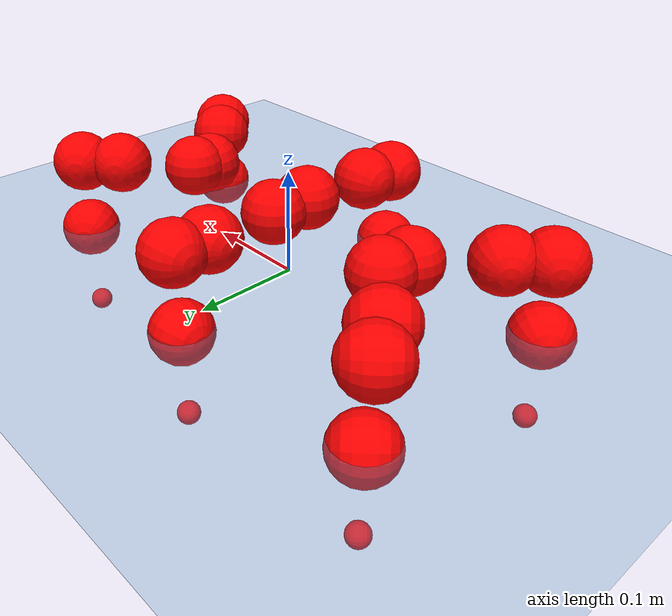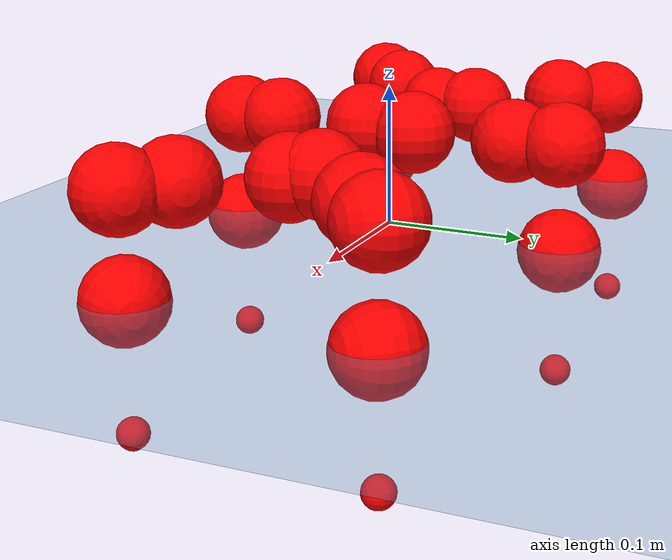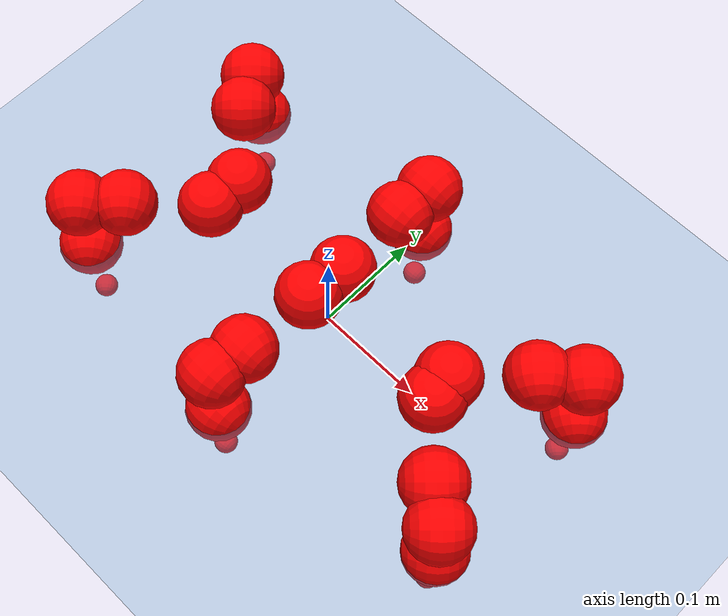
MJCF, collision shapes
<mujoco model="Golem">
  <compiler angle="radian" assetdir="assets" balanceinertia="true" inertiafromgeom="false"/>

  <option timestep="0.005" density="1.2" viscosity="2e-05"/>

  <size nkey="1"/>

  <visual>
    <quality shadowsize="8192"/>
    <map shadowclip="0.5"/>
  </visual>

  <default>
    <default class="/">
      <joint armature="0.01" damping="0.01" frictionloss="0.01"/>
      <geom contype="0" conaffinity="0" group="1" solref="-1000 -80"/>
      <site size="0.01 0.005 0.005" group="5"/>
      <general forcelimited="true" biastype="affine" gainprm="25" biasprm="0 -25 -0.5"/>
      <default class="visual">
        <geom type="mesh" group="2"/>
      </default>
      <default class="collision">
        <geom group="3"/>
      </default>
      <default class="foot">
        <geom size="0.01 0 0" condim="6" group="4" priority="1" solimp="0.015 1 0.01"/>
      </default>
      <default class="reward_collision_sphere">
        <geom group="5" rgba="1 0 0 1"/>
      </default>
    </default>
  </default>

  <asset>
    <texture type="skybox" colorspace="auto" name="//unnamed_texture_0" builtin="gradient" rgb1="0.95 0.95 0.95" rgb2="0.95 0.95 0.95" width="100" height="600"/>
    <texture type="2d" colorspace="auto" name="texplane" builtin="checker" rgb1="0.345 0.575 0.748" rgb2="0.345 0.575 0.748" markrgb="1 1 1" width="512" height="512"/>
    <material name="MatPlane" class="/" texture="texplane" texuniform="true" texrepeat="2 2" specular="0.9"/>
    <mesh name="body" class="/" file="body.stl" scale="0.001 0.001 0.001"/>
    <mesh name="coxa" class="/" file="coxa.stl" scale="0.001 0.001 0.001"/>
    <mesh name="femur" class="/" file="femur.stl" scale="0.001 0.001 0.001"/>
    <mesh name="tibia" class="/" file="tibia.stl" scale="0.001 0.001 0.001"/>
    <mesh name="tarsus" class="/" file="tarsus.stl" scale="0.001 0.001 0.001"/>
  </asset>

  <worldbody>
    <geom name="floor" class="/" size="100 100 0.125" type="plane" group="0" material="MatPlane"/>
    <light name="toplight_shadow" class="/" pos="0 0 5" dir="0.0990148 0.0990148 -0.990148" type="directional" ambient="0.04 0.04 0.04" diffuse="0.55 0.55 0.55" specular="0.12 0.12 0.12"/>
    <light name="toplight_fill" class="/" pos="0 0 5" dir="0.0990148 0.0990148 -0.990148" type="directional" castshadow="false" ambient="0.04 0.04 0.04" diffuse="0.3 0.3 0.3" specular="0.08 0.08 0.08"/>
    <body name="trunk" pos="0.000216411 -0.000286501 0.00214795" quat="1 0.000589092 -0.00019794 0.000322249">
      <inertial pos="0.00317705 0.000323666 -0.00258976" quat="1 0.000180201 3.80427e-05 1.50365e-05" mass="1.44205" diaginertia="0.00406627 5.4065e-05 0.0108099"/>
      <joint name="//unnamed_joint_0" type="free"/>
      <geom name="//unnamed_geom_1" class="/" pos="0 0 0.0645455" quat="1 0 0 0" type="mesh" rgba="0.9 0.9 0.9 1" mesh="body"/>
      <site name="imu" class="/" pos="0.104308 -0.0120851 0.0978239" size="0.00730593"/>
      <camera name="track" class="/" pos="0 -0.706222 0" quat="0.707107 0.707107 0 0" mode="trackcom"/>
      <camera name="ego_camera" class="/" pos="0.107919 0 0.100852" quat="-0.5 -0.5 0.5 0.5"/>
      <body name="coxa_RR" pos="-0.147253 -0.0319284 0.0589924" quat="0.382548 0.000131704 0.000633588 -0.923936">
        <inertial pos="-0.00116298 0.000853389 0.00119597" quat="0.999946 -0.00100902 -0.0095086 -0.00403404" mass="0.0772037" diaginertia="0.0039794 5.49511e-05 0.0106984"/>
        <joint name="coxa_joint_RR" class="/" pos="0 0 0" axis="-0.00393799 0.0032223 -0.999987" stiffness="0.0069708" range="-3.16312 3.14186" armature="0.00724095" damping="0" frictionloss="0.00817097"/>
        <geom name="//unnamed_geom_2" class="/" type="mesh" rgba="0.2 0.2 0.2 1" mesh="coxa"/>
        <geom name="//unnamed_geom_3" class="reward_collision_sphere" size="0.0292237" pos="-0.0249043 0 0"/>
        <body name="femur_RR" pos="0.049754 -0.000138074 0.00273264" quat="0.499971 -0.500441 0.499696 0.49989">
          <inertial pos="-0.00071209 0.000777101 -0.00210509" quat="0.999999 0.000273631 0.00145999 -0.000803345" mass="0.0773726" diaginertia="0.00408241 5.6758e-05 0.0101086"/>
          <joint name="femur_joint_RR" class="/" pos="0 0 0" axis="0.0125781 -0.00449532 -0.999911" range="-3.14127 3.12297" armature="0.00720348" damping="0" frictionloss="0.00636382"/>
          <geom name="//unnamed_geom_4" class="/" type="mesh" rgba="0.9 0.9 0.9 1" mesh="femur"/>
          <geom name="//unnamed_geom_5" class="reward_collision_sphere" size="0.0292237"/>
          <body name="tibia_RR" pos="-0.000219168 -0.0392589 4.20076e-05" quat="-0.00053563 1 -4.60287e-05 0.000605536">
            <inertial pos="0.00113449 0.00242086 0.00116641" quat="0.999999 0.000224638 -0.000688101 0.000876347" mass="0.0790134" diaginertia="0.00381501 5.48739e-05 0.0103535"/>
            <joint name="tibia_joint_RR" class="/" pos="0 0 0" axis="0.00126682 0.000901203 0.999999" stiffness="0.0100176" range="-3.14749 3.12401" armature="0.00698236" damping="0.00744894" frictionloss="0.00688288"/>
            <geom name="//unnamed_geom_6" class="/" type="mesh" rgba="0.2 0.2 0.2 1" mesh="tibia"/>
            <geom name="//unnamed_geom_7" class="reward_collision_sphere" size="0.0292237"/>
            <body name="tarsus_RR" pos="0.072598 0.00172214 -0.000830752" quat="0.999999 0.000368459 -0.00125973 0.000568477">
              <inertial pos="0.0494484 -0.000433474 0.001426" quat="0.497536 0.504085 0.498876 0.499479" mass="0.0799196" diaginertia="0.00419918 5.49655e-05 0.011073"/>
              <joint name="tarsus_joint_RR" class="/" pos="0 0 0" axis="-0.00156945 -0.00379672 0.999992" range="-3.19429 3.11778" armature="0.0064927" damping="0.0148568" frictionloss="0.00786191"/>
              <geom name="//unnamed_geom_8" class="/" type="mesh" rgba="0.9 0.9 0.9 1" mesh="tarsus"/>
              <geom name="foot_1" class="foot" size="0.00788977" pos="0.0929761 0 0" quat="0 -0.707107 0 0.707107"/>
              <geom name="//unnamed_geom_10" class="reward_collision_sphere" size="0.0292237"/>
              <geom name="//unnamed_geom_11" class="reward_collision_sphere" size="0.0109589" pos="0.0892404 0 0"/>
              <site name="foot_1" class="foot" pos="0.0929761 0 0" quat="0 -0.707107 0 0.707107" size="0.00730593"/>
            </body>
          </body>
        </body>
      </body>
      <body name="coxa_RM" pos="-0.00401139 -0.04396 0.0685155" quat="0.707111 2.34295e-05 2.62489e-05 -0.707103">
        <inertial pos="0.00272559 -0.000330267 0.0028751" quat="0.999999 -4.89079e-05 -0.000222995 0.00111759" mass="0.0752468" diaginertia="0.00384779 5.37582e-05 0.0102431"/>
        <joint name="coxa_joint_RM" class="/" pos="0 0 0" axis="0.000181266 -0.0013622 -0.999999" range="-3.14295 3.15671" armature="0.00691675" damping="0.0157274" frictionloss="0.00667718"/>
        <geom name="//unnamed_geom_12" class="/" type="mesh" rgba="0.2 0.2 0.2 1" mesh="coxa"/>
        <geom name="//unnamed_geom_13" class="reward_collision_sphere" size="0.0292237" pos="-0.0249043 0 0"/>
        <body name="femur_RM" pos="0.0461883 -0.00344303 -0.00185904" quat="0.499966 -0.499974 0.500108 0.499952">
          <inertial pos="0.00219648 0.00192679 0.000125773" quat="0.999943 -0.00704994 0.00711488 0.00357895" mass="0.0822261" diaginertia="0.00405206 5.39821e-05 0.0102602"/>
          <joint name="femur_joint_RM" class="/" pos="0 0 0" axis="-0.0127858 0.0037308 -0.999911" stiffness="1.64152e-05" range="-3.19365 3.15914" armature="0.00729877" damping="0.0189983" frictionloss="0.00802107"/>
          <geom name="//unnamed_geom_14" class="/" type="mesh" rgba="0.9 0.9 0.9 1" mesh="femur"/>
          <geom name="//unnamed_geom_15" class="reward_collision_sphere" size="0.0292237"/>
          <body name="tibia_RM" pos="0.00106284 -0.0332893 -0.0033468" quat="0.000258548 1 -0.000144999 -0.000218173">
            <inertial pos="0.00281922 -0.00332452 -0.00026489" quat="0.999995 -0.00123185 0.00176916 0.00243097" mass="0.0776388" diaginertia="0.00389436 5.38044e-05 0.010412"/>
            <joint name="tibia_joint_RM" class="/" pos="0 0 0" axis="0.00372483 -0.000888406 0.999993" range="-3.10845 3.0838" armature="0.00729831" damping="0.0216353" frictionloss="0.00692126"/>
            <geom name="//unnamed_geom_16" class="/" type="mesh" rgba="0.2 0.2 0.2 1" mesh="tibia"/>
            <geom name="//unnamed_geom_17" class="reward_collision_sphere" size="0.0292237"/>
            <body name="tarsus_RM" pos="0.0758037 0.000957584 -0.000986508" quat="1 -6.04534e-05 0.000141635 -3.52888e-05">
              <inertial pos="0.0521849 -0.00193884 0.000105391" quat="0.493102 0.506645 0.500121 0.500041" mass="0.0794755" diaginertia="0.00406673 5.66834e-05 0.0101415"/>
              <joint name="tarsus_joint_RM" class="/" pos="0 0 0" axis="-0.000701508 -0.00108675 0.999999" stiffness="0.00697867" range="-3.14832 3.19288" armature="0.00675021" damping="0.00705335" frictionloss="0.00704302"/>
              <geom name="//unnamed_geom_18" class="/" type="mesh" rgba="0.9 0.9 0.9 1" mesh="tarsus"/>
              <geom name="foot_2" class="foot" size="0.00727259" pos="0.0929761 0 0" quat="0 -0.707107 0 0.707107"/>
              <geom name="//unnamed_geom_20" class="reward_collision_sphere" size="0.0292237"/>
              <geom name="//unnamed_geom_21" class="reward_collision_sphere" size="0.0109589" pos="0.0892404 0 0"/>
              <site name="foot_2" class="foot" pos="0.0929761 0 0" quat="0 -0.707107 0 0.707107" size="0.00730593"/>
            </body>
          </body>
        </body>
      </body>
      <body name="coxa_RF" pos="0.147454 -0.0284588 0.0621648" quat="0.923654 -9.65181e-05 -0.000273648 -0.383228">
        <inertial pos="-0.00149898 0.00162713 0.00253046" quat="0.999963 0.00508431 -0.00687377 -0.00103066" mass="0.075519" diaginertia="0.00402984 5.60902e-05 0.0104277"/>
        <joint name="coxa_joint_RF" class="/" pos="0 0 0" axis="-0.00412082 -0.00133185 -0.999991" range="-3.19543 3.13551" armature="0.00651795" damping="0.0267001" frictionloss="0.00706853"/>
        <geom name="//unnamed_geom_22" class="/" type="mesh" rgba="0.2 0.2 0.2 1" mesh="coxa"/>
        <geom name="//unnamed_geom_23" class="reward_collision_sphere" size="0.0292237" pos="-0.0249043 0 0"/>
        <body name="femur_RF" pos="0.0473706 -0.00198889 0.003922" quat="0.500033 -0.500013 0.499989 0.499965">
          <inertial pos="0.000107132 -0.00159173 -7.90251e-05" quat="0.999997 -0.00217129 2.89815e-05 -0.000784033" mass="0.0765193" diaginertia="0.00386707 5.57571e-05 0.0102787"/>
          <joint name="femur_joint_RF" class="/" pos="0 0 0" axis="0.012726 0.00335621 -0.999913" stiffness="0.0010399" range="-3.10247 3.1401" armature="0.00785033" damping="0" frictionloss="0.00730477"/>
          <geom name="//unnamed_geom_24" class="/" type="mesh" rgba="0.9 0.9 0.9 1" mesh="femur"/>
          <geom name="//unnamed_geom_25" class="reward_collision_sphere" size="0.0292237"/>
          <body name="tibia_RF" pos="0.000791168 -0.036706 0.00273559" quat="0.000570103 1 -5.31888e-05 -0.000583687">
            <inertial pos="0.00121145 0.0025919 -0.00278495" quat="0.999952 -0.00401929 -0.00378547 0.00807005" mass="0.0782227" diaginertia="0.00395396 5.29577e-05 0.00988105"/>
            <joint name="tibia_joint_RF" class="/" pos="0 0 0" axis="0.00154849 0.00134959 0.999998" stiffness="0.00347495" range="-3.17863 3.15647" armature="0.00627868" damping="0.00708404" frictionloss="0.00733253"/>
            <geom name="//unnamed_geom_26" class="/" type="mesh" rgba="0.2 0.2 0.2 1" mesh="tibia"/>
            <geom name="//unnamed_geom_27" class="reward_collision_sphere" size="0.0292237"/>
            <body name="tarsus_RF" pos="0.0704977 -0.000597769 -0.00248222" quat="1 2.0188e-05 -2.47177e-05 1.38497e-05">
              <inertial pos="0.0502333 -0.000722591 -0.00123727" quat="0.497608 0.494874 0.503783 0.503675" mass="0.0758319" diaginertia="0.00395386 5.43759e-05 0.0103935"/>
              <joint name="tarsus_joint_RF" class="/" pos="0 0 0" axis="0.000503394 -0.00245933 0.999997" stiffness="0.00103875" range="-3.1497 3.18363" armature="0.0074026" damping="0.0171758" frictionloss="0.00802582"/>
              <geom name="//unnamed_geom_28" class="/" type="mesh" rgba="0.9 0.9 0.9 1" mesh="tarsus"/>
              <geom name="foot_3" class="foot" size="0.00796834" pos="0.0929761 0 0" quat="0 -0.707107 0 0.707107"/>
              <geom name="//unnamed_geom_30" class="reward_collision_sphere" size="0.0292237"/>
              <geom name="//unnamed_geom_31" class="reward_collision_sphere" size="0.0109589" pos="0.0892404 0 0"/>
              <site name="foot_3" class="foot" pos="0.0929761 0 0" quat="0 -0.707107 0 0.707107" size="0.00730593"/>
            </body>
          </body>
        </body>
      </body>
      <body name="coxa_LR" pos="-0.145277 0.0356245 0.0613778" quat="0.382692 -7.33255e-06 1.34535e-05 0.923876">
        <inertial pos="0.000299273 -0.00193624 -0.00216654" quat="0.999978 -0.00262528 -0.00256825 0.0055941" mass="0.0797357" diaginertia="0.00408371 5.58287e-05 0.0106125"/>
        <joint name="coxa_joint_LR" class="/" pos="0 0 0" axis="0.000363843 -0.00330735 -0.999994" range="-3.17597 3.13867" armature="0.0062226" damping="0.0183703" frictionloss="0.00764804"/>
        <geom name="//unnamed_geom_32" class="/" type="mesh" rgba="0.2 0.2 0.2 1" mesh="coxa"/>
        <geom name="//unnamed_geom_33" class="reward_collision_sphere" size="0.0292237" pos="-0.0249043 0 0"/>
        <body name="femur_LR" pos="0.0493576 -0.0020621 0.00235374" quat="0.500061 -0.500002 0.499959 0.499979">
          <inertial pos="0.0028834 -0.000969392 -0.00136349" quat="0.999989 0.00209332 0.00327202 -0.00278148" mass="0.0769372" diaginertia="0.00394878 5.4605e-05 0.0107983"/>
          <joint name="femur_joint_LR" class="/" pos="0 0 0" axis="0.000883276 -0.00180635 0.999998" stiffness="0.00146694" range="-3.08585 3.1091" armature="0.0075181" damping="0.0105285" frictionloss="0.00691212"/>
          <geom name="//unnamed_geom_34" class="/" type="mesh" rgba="0.9 0.9 0.9 1" mesh="femur"/>
          <geom name="//unnamed_geom_35" class="reward_collision_sphere" size="0.0292237"/>
          <body name="tibia_LR" pos="0.00317781 -0.038495 -0.00697796" quat="-0.000445836 1 -2.44496e-05 3.39614e-05">
            <inertial pos="0.00293199 -0.00384042 0.00399445" quat="0.999932 -0.00460847 0.0060848 -0.00885579" mass="0.0739961" diaginertia="0.00387103 5.5016e-05 0.0102513"/>
            <joint name="tibia_joint_LR" class="/" pos="0 0 0" axis="-0.00267637 0.00456746 -0.999986" range="-3.09049 3.13121" armature="0.00745686" damping="0.00879623" frictionloss="0.00635037"/>
            <geom name="//unnamed_geom_36" class="/" type="mesh" rgba="0.2 0.2 0.2 1" mesh="tibia"/>
            <geom name="//unnamed_geom_37" class="reward_collision_sphere" size="0.0292237"/>
            <body name="tarsus_LR" pos="0.0725189 0.00613791 0.00412924" quat="0.999999 -0.000987743 -0.000359187 -0.000362082">
              <inertial pos="0.049639 -0.0017441 -0.00110473" quat="0.500883 0.497081 0.498918 0.503098" mass="0.0797019" diaginertia="0.00403712 5.42135e-05 0.0105426"/>
              <joint name="tarsus_joint_LR" class="/" pos="0 0 0" axis="-0.000223125 -0.012703 -0.999919" range="-3.14274 3.13224" armature="0.00733582" damping="0.0173172" frictionloss="0.00765822"/>
              <geom name="//unnamed_geom_38" class="/" type="mesh" rgba="0.9 0.9 0.9 1" mesh="tarsus"/>
              <geom name="foot_4" class="foot" size="0.00719438" pos="0.0929761 0 0" quat="0.707107 0 -0.707107 0"/>
              <geom name="//unnamed_geom_40" class="reward_collision_sphere" size="0.0292237"/>
              <geom name="//unnamed_geom_41" class="reward_collision_sphere" size="0.0109589" pos="0.0892404 0 0"/>
              <site name="foot_4" class="foot" pos="0.0929761 0 0" quat="0.707107 0 -0.707107 0" size="0.00730593"/>
            </body>
          </body>
        </body>
      </body>
      <body name="coxa_LM" pos="-0.00131953 0.0438585 0.0661341" quat="0.707201 0.000735873 -0.000214998 0.707012">
        <inertial pos="-0.00254229 -0.000311324 0.00240339" quat="0.999999 -0.00154004 0.000510167 -0.000327711" mass="0.0738899" diaginertia="0.00381765 5.40217e-05 0.0105854"/>
        <joint name="coxa_joint_LM" class="/" pos="0 0 0" axis="-0.00163982 0.00143167 -0.999998" range="-3.15935 3.10554" armature="0.00653716" damping="0.0174273" frictionloss="0.00775987"/>
        <geom name="//unnamed_geom_42" class="/" type="mesh" rgba="0.2 0.2 0.2 1" mesh="coxa"/>
        <geom name="//unnamed_geom_43" class="reward_collision_sphere" size="0.0292237" pos="-0.0249043 0 0"/>
        <body name="femur_LM" pos="0.0476274 0.00229905 5.25295e-05" quat="0.499997 -0.499972 0.500005 0.500025">
          <inertial pos="0.000460993 -0.00174628 -8.33636e-05" quat="0.999929 0.0116711 0.002226 0.000457455" mass="0.0771096" diaginertia="0.00385577 5.47648e-05 0.010422"/>
          <joint name="femur_joint_LM" class="/" pos="0 0 0" axis="-0.00324945 -0.0137373 0.9999" stiffness="0.0121138" range="-3.09712 3.14015" armature="0.00626663" damping="0.0130754" frictionloss="0.00810751"/>
          <geom name="//unnamed_geom_44" class="/" type="mesh" rgba="0.9 0.9 0.9 1" mesh="femur"/>
          <geom name="//unnamed_geom_45" class="reward_collision_sphere" size="0.0292237"/>
          <body name="tibia_LM" pos="-0.000604576 -0.0357123 -0.00106747" quat="-0.000111691 1 0.000412955 9.13475e-06">
            <inertial pos="0.000636517 -0.00158126 0.000278866" quat="1 -7.26693e-05 1.3011e-05 -5.27792e-08" mass="0.0809017" diaginertia="0.00397741 5.53711e-05 0.0106604"/>
            <joint name="tibia_joint_LM" class="/" pos="0 0 0" axis="0.000162415 -0.00153826 -0.999999" stiffness="0.00731618" range="-3.10747 3.14482" armature="0.00757517" damping="0.00348485" frictionloss="0.00639132"/>
            <geom name="//unnamed_geom_46" class="/" type="mesh" rgba="0.2 0.2 0.2 1" mesh="tibia"/>
            <geom name="//unnamed_geom_47" class="reward_collision_sphere" size="0.0292237"/>
            <body name="tarsus_LM" pos="0.0761907 -0.000730496 -0.00274363" quat="1 -0.000246036 -1.07027e-05 0.000174974">
              <inertial pos="0.0472815 -0.00167648 -0.00020959" quat="0.50026 0.50129 0.499009 0.499439" mass="0.0770148" diaginertia="0.00400677 5.58593e-05 0.0107327"/>
              <joint name="tarsus_joint_LM" class="/" pos="0 0 0" axis="0.00119891 -0.00549749 -0.999984" range="-3.09131 3.10455" armature="0.00730967" damping="0.000279213" frictionloss="0.00692425"/>
              <geom name="//unnamed_geom_48" class="/" type="mesh" rgba="0.9 0.9 0.9 1" mesh="tarsus"/>
              <geom name="foot_5" class="foot" size="0.00766899" pos="0.0929761 0 0" quat="0.707107 0 -0.707107 0"/>
              <geom name="//unnamed_geom_50" class="reward_collision_sphere" size="0.0292237"/>
              <geom name="//unnamed_geom_51" class="reward_collision_sphere" size="0.0109589" pos="0.0892404 0 0"/>
              <site name="foot_5" class="foot" pos="0.0929761 0 0" quat="0.707107 0 -0.707107 0" size="0.00730593"/>
            </body>
          </body>
        </body>
      </body>
      <body name="coxa_LF" pos="0.144888 0.0280522 0.0657186" quat="0.923777 0.000783261 -0.00104619 0.382928">
        <inertial pos="-0.000684323 -0.0016557 -0.000574195" quat="0.999941 -0.00131184 0.00281597 0.0103819" mass="0.0756862" diaginertia="0.00385348 5.34917e-05 0.0102182"/>
        <joint name="coxa_joint_LF" class="/" pos="0 0 0" axis="-0.00613563 -0.00172628 -0.99998" range="-3.17804 3.08373" armature="0.0074345" damping="0.00342885" frictionloss="0.00827123"/>
        <geom name="//unnamed_geom_52" class="/" type="mesh" rgba="0.2 0.2 0.2 1" mesh="coxa"/>
        <geom name="//unnamed_geom_53" class="reward_collision_sphere" size="0.0292237" pos="-0.0249043 0 0"/>
        <body name="femur_LF" pos="0.0474006 -0.000113771 0.00139187" quat="0.499196 -0.500071 0.500862 0.49987">
          <inertial pos="0.00143366 -9.44203e-05 -0.000855613" quat="0.999981 -0.00400961 -0.00456826 0.000566127" mass="0.0787307" diaginertia="0.00384758 5.53616e-05 0.0102126"/>
          <joint name="femur_joint_LF" class="/" pos="0 0 0" axis="-0.00738063 -0.01115 0.999911" range="-3.15526 3.08395" armature="0.00737154" damping="0.00924846" frictionloss="0.00786789"/>
          <geom name="//unnamed_geom_54" class="/" type="mesh" rgba="0.9 0.9 0.9 1" mesh="femur"/>
          <geom name="//unnamed_geom_55" class="reward_collision_sphere" size="0.0292237"/>
          <body name="tibia_LF" pos="0.000801853 -0.0391684 -0.00351232" quat="0.000246789 1 -0.000188807 0.00019386">
            <inertial pos="0.00143794 -0.000220826 -0.000941493" quat="0.99991 -0.00244268 0.0012403 0.0131233" mass="0.0797887" diaginertia="0.00380235 5.2875e-05 0.0100574"/>
            <joint name="tibia_joint_LF" class="/" pos="0 0 0" axis="-0.0131249 0.00240449 -0.999911" stiffness="0.00258552" range="-3.12048 3.12701" armature="0.00834644" damping="0.00447661" frictionloss="0.00656369"/>
            <geom name="//unnamed_geom_56" class="/" type="mesh" rgba="0.2 0.2 0.2 1" mesh="tibia"/>
            <geom name="//unnamed_geom_57" class="reward_collision_sphere" size="0.0292237"/>
            <body name="tarsus_LF" pos="0.0753481 0.00247286 0.00248103" quat="1 0.000296425 -0.000243456 0.000118227">
              <inertial pos="0.0480399 0.000947112 -0.000812455" quat="0.500185 0.500512 0.499853 0.49945" mass="0.0737611" diaginertia="0.00392827 5.31169e-05 0.0101024"/>
              <joint name="tarsus_joint_LF" class="/" pos="0 0 0" axis="0.00702393 0.00412332 -0.999967" stiffness="0.0372014" range="-3.13508 3.18709" armature="0.00754749" damping="0.0318222" frictionloss="0.00757028"/>
              <geom name="//unnamed_geom_58" class="/" type="mesh" rgba="0.9 0.9 0.9 1" mesh="tarsus"/>
              <geom name="foot_6" class="foot" size="0.00742004" pos="0.0929761 0 0" quat="0.707107 0 -0.707107 0"/>
              <geom name="//unnamed_geom_60" class="reward_collision_sphere" size="0.0292237"/>
              <geom name="//unnamed_geom_61" class="reward_collision_sphere" size="0.0109589" pos="0.0892404 0 0"/>
              <site name="foot_6" class="foot" pos="0.0929761 0 0" quat="0.707107 0 -0.707107 0" size="0.00730593"/>
            </body>
          </body>
        </body>
      </body>
    </body>
  </worldbody>

  <contact>
    <pair class="/" geom1="floor" geom2="foot_1" name="//unnamed_contact_0"/>
    <pair class="/" geom1="floor" geom2="foot_2" name="//unnamed_contact_1"/>
    <pair class="/" geom1="floor" geom2="foot_3" name="//unnamed_contact_2"/>
    <pair class="/" geom1="floor" geom2="foot_4" name="//unnamed_contact_3"/>
    <pair class="/" geom1="floor" geom2="foot_5" name="//unnamed_contact_4"/>
    <pair class="/" geom1="floor" geom2="foot_6" name="//unnamed_contact_5"/>
  </contact>

  <actuator>
    <general name="coxa_joint_RR" class="/" joint="coxa_joint_RR" forcerange="-5.67621 5.67621" gainprm="18.6606" biasprm="0 -18.6606 -0.37766"/>
    <general name="femur_joint_RR" class="/" joint="femur_joint_RR" forcerange="-5.89203 5.89203" gainprm="18.6606" biasprm="0 -18.6606 -0.37766"/>
    <general name="tibia_joint_RR" class="/" joint="tibia_joint_RR" forcerange="-4.90305 4.90305" gainprm="18.6606" biasprm="0 -18.6606 -0.37766"/>
    <general name="tarsus_joint_RR" class="/" joint="tarsus_joint_RR" forcerange="-5.65494 5.65494" gainprm="18.6606" biasprm="0 -18.6606 -0.37766"/>
    <general name="coxa_joint_RM" class="/" joint="coxa_joint_RM" forcerange="-5.65822 5.65822" gainprm="18.6606" biasprm="0 -18.6606 -0.37766"/>
    <general name="femur_joint_RM" class="/" joint="femur_joint_RM" forcerange="-5.50917 5.50917" gainprm="18.6606" biasprm="0 -18.6606 -0.37766"/>
    <general name="tibia_joint_RM" class="/" joint="tibia_joint_RM" forcerange="-4.77768 4.77768" gainprm="18.6606" biasprm="0 -18.6606 -0.37766"/>
    <general name="tarsus_joint_RM" class="/" joint="tarsus_joint_RM" forcerange="-5.13506 5.13506" gainprm="18.6606" biasprm="0 -18.6606 -0.37766"/>
    <general name="coxa_joint_RF" class="/" joint="coxa_joint_RF" forcerange="-5.34777 5.34777" gainprm="18.6606" biasprm="0 -18.6606 -0.37766"/>
    <general name="femur_joint_RF" class="/" joint="femur_joint_RF" forcerange="-5.3288 5.3288" gainprm="18.6606" biasprm="0 -18.6606 -0.37766"/>
    <general name="tibia_joint_RF" class="/" joint="tibia_joint_RF" forcerange="-4.77449 4.77449" gainprm="18.6606" biasprm="0 -18.6606 -0.37766"/>
    <general name="tarsus_joint_RF" class="/" joint="tarsus_joint_RF" forcerange="-5.20393 5.20393" gainprm="18.6606" biasprm="0 -18.6606 -0.37766"/>
    <general name="coxa_joint_LR" class="/" joint="coxa_joint_LR" forcerange="-5.87506 5.87506" gainprm="18.6606" biasprm="0 -18.6606 -0.37766"/>
    <general name="femur_joint_LR" class="/" joint="femur_joint_LR" forcerange="-4.95327 4.95327" gainprm="18.6606" biasprm="0 -18.6606 -0.37766"/>
    <general name="tibia_joint_LR" class="/" joint="tibia_joint_LR" forcerange="-4.77549 4.77549" gainprm="18.6606" biasprm="0 -18.6606 -0.37766"/>
    <general name="tarsus_joint_LR" class="/" joint="tarsus_joint_LR" forcerange="-5.20501 5.20501" gainprm="18.6606" biasprm="0 -18.6606 -0.37766"/>
    <general name="coxa_joint_LM" class="/" joint="coxa_joint_LM" forcerange="-5.39227 5.39227" gainprm="18.6606" biasprm="0 -18.6606 -0.37766"/>
    <general name="femur_joint_LM" class="/" joint="femur_joint_LM" forcerange="-5.37464 5.37464" gainprm="18.6606" biasprm="0 -18.6606 -0.37766"/>
    <general name="tibia_joint_LM" class="/" joint="tibia_joint_LM" forcerange="-5.51788 5.51788" gainprm="18.6606" biasprm="0 -18.6606 -0.37766"/>
    <general name="tarsus_joint_LM" class="/" joint="tarsus_joint_LM" forcerange="-5.34374 5.34374" gainprm="18.6606" biasprm="0 -18.6606 -0.37766"/>
    <general name="coxa_joint_LF" class="/" joint="coxa_joint_LF" forcerange="-5.49518 5.49518" gainprm="18.6606" biasprm="0 -18.6606 -0.37766"/>
    <general name="femur_joint_LF" class="/" joint="femur_joint_LF" forcerange="-5.44795 5.44795" gainprm="18.6606" biasprm="0 -18.6606 -0.37766"/>
    <general name="tibia_joint_LF" class="/" joint="tibia_joint_LF" forcerange="-5.51676 5.51676" gainprm="18.6606" biasprm="0 -18.6606 -0.37766"/>
    <general name="tarsus_joint_LF" class="/" joint="tarsus_joint_LF" forcerange="-4.854 4.854" gainprm="18.6606" biasprm="0 -18.6606 -0.37766"/>
  </actuator>

  <sensor>
    <gyro site="imu" name="imu_angular_velocity"/>
    <velocimeter site="imu" name="imu_linear_velocity"/>
    <framelinvel objtype="site" objname="foot_1" name="foot_1_global_linear_velocity"/>
    <framelinvel objtype="site" objname="foot_2" name="foot_2_global_linear_velocity"/>
    <framelinvel objtype="site" objname="foot_3" name="foot_3_global_linear_velocity"/>
    <framelinvel objtype="site" objname="foot_4" name="foot_4_global_linear_velocity"/>
    <framelinvel objtype="site" objname="foot_5" name="foot_5_global_linear_velocity"/>
    <framelinvel objtype="site" objname="foot_6" name="foot_6_global_linear_velocity"/>
  </sensor>

  <keyframe>
    <key name="home" qpos="0 0 0.1457 1 0 0 0 0 0 0 0 0 0 0 0 0 0 0 0 0 0 0 0 0 0 0 0 0 0 0 0"/>
  </keyframe>
</mujoco>
